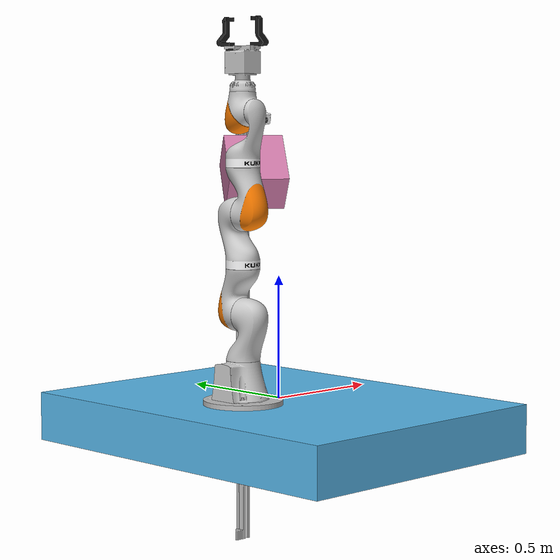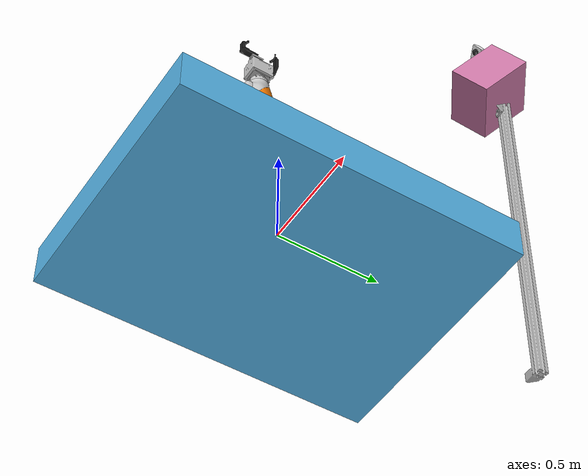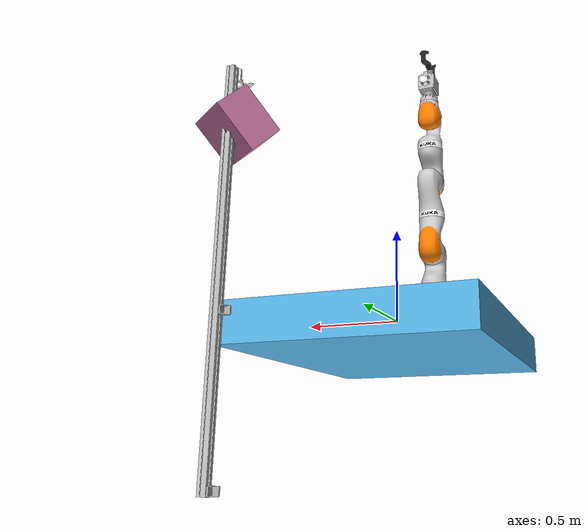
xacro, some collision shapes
<?xml version="1.0"?>

<robot xmlns:xacro="http://www.ros.org/wiki/xacro" name="rll_cell">

  <xacro:arg name="hardware_interface" default="PositionJointInterface" />
  <xacro:arg name="robot_name" default="iiwa" />
  <xacro:arg name="eef_type" default="egl90" />

  <xacro:include filename="$(find rll_description)/urdf/rll_cell.xacro" />
  <xacro:rll_cell hardware_interface="$(arg hardware_interface)" robot_name="$(arg robot_name)" eef_type="$(arg eef_type)" />

</robot>

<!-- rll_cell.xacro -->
<robot xmlns:xacro="http://www.ros.org/wiki/xacro" name="rll_cell">

  <xacro:include filename="$(find rll_description)/urdf/iiwa7/iiwa7.xacro" />
  <xacro:include filename="$(find rll_description)/urdf/visard160/rc_visard_160.xacro" />
  <xacro:include filename="$(find rll_description)/urdf/rll_virtual.xacro" />
  <xacro:include filename="$(find rll_description)/urdf/rll.gazebo.xacro" />

  <xacro:macro name="rll_cell" params="hardware_interface robot_name eef_type:=egl90">

    <link name="world" />
    <joint name="table_joint" type="fixed">
      <parent link="world" />
      <child link="table" />
      <origin xyz="0 0 0" rpy="0 0 0" />
    </joint>
    <link name="table">
      <inertial>
        <origin xyz="0 0 -0.1" rpy="0 0 0" />
        <mass value="500" />
        <inertia ixx="108" ixy="0" ixz="0" iyy="62" iyz="0" izz="167" />
      </inertial>
      <visual>
        <origin xyz="0 0 0" rpy="0 0 ${90 * pi / 180}" />
        <geometry>
          <mesh filename="package://rll_description/meshes/rll/visual/table.dae" />
        </geometry>
      </visual>
      <collision>
        <origin xyz="0 0 -0.1" rpy="0 0 0" />
        <geometry>
          <box size="1.2 1.6 0.2" />
        </geometry>
      </collision>
    </link>

    <joint name="base_adapter_joint" type="fixed">
      <parent link="table" />
      <child link="${robot_name}_base_adapter" />
      <origin xyz="-0.2 0 0" rpy="0 0 0" />
    </joint>
    <link name="${robot_name}_base_adapter">
      <visual>
        <origin xyz="0 0 0" rpy="0 0 0" />
        <geometry>
          <mesh filename="package://rll_description/meshes/rll/visual/base_adapter.dae" />
        </geometry>
      </visual>
      <collision>
        <origin xyz="0 0 0.01" rpy="0 0 0" />
        <geometry>
          <cylinder length="0.02" radius="0.16" />
        </geometry>
      </collision>
    </link>

    <!-- KUKA iiwa manipulator -->
    <xacro:iiwa7 hardware_interface="${hardware_interface}" robot_name="${robot_name}" parent="${robot_name}_base_adapter">
      <origin xyz="0 0 0.02" rpy="0 0 0" />
    </xacro:iiwa7>

    <!-- The rll_sdk comes with some predefined endeffectors.
         If you want to use a different endeffector you simply need to provide the corresponding macros -->
    <xacro:if value="${eef_type == 'egl90'}">
      <xacro:include filename="$(find rll_description)/urdf/eef/egl90/egl90.xacro" />
      <xacro:egl90 parent="${robot_name}_link_ee" robot_name="${robot_name}" />
    </xacro:if>

    <xacro:if value="${eef_type == 'crg200'}">
      <xacro:include filename="$(find rll_description)/urdf/eef/crg200/crg200.xacro" />
      <xacro:crg200 parent="${robot_name}_link_ee" robot_name="${robot_name}" />
    </xacro:if>

    <xacro:if value="${eef_type == 'cap'}">
      <xacro:include filename="$(find rll_description)/urdf/eef/cap/cap.xacro" />
      <xacro:cap parent="${robot_name}_link_ee" robot_name="${robot_name}" />
    </xacro:if>

    <xacro:if value="${eef_type == 'none'}">
      <xacro:include filename="$(find rll_description)/urdf/eef/none/none.xacro" />
      <xacro:none parent="${robot_name}_link_ee" robot_name="${robot_name}" />
    </xacro:if>

    <!-- Profile on which the cameras are mounted -->
    <joint name="profile_cams_joint" type="fixed">
      <parent link="table" />
      <child link="profile_cams" />
      <origin xyz="0 0 0" rpy="0 0 0" />
    </joint>
    <link name="profile_cams">
      <inertial>
        <origin xyz="0.58 0.82 0.17" rpy="0 0 0" />
        <mass value="5" />
        <inertia ixx="1.67" ixy="0" ixz="0" iyy="1.67" iyz="0" izz="0.002" />
      </inertial>
      <visual>
        <origin xyz="0 0 0" rpy="0 0 ${90 * pi / 180}" />
        <geometry>
          <mesh filename="package://rll_description/meshes/rll/visual/profile_cams.dae" />
        </geometry>
      </visual>
      <collision>
        <origin xyz="0.58 0.82 0.17" rpy="0 0 0" />
        <geometry>
          <box size="0.05 0.05 2.0" />
        </geometry>
      </collision>
    </link>

    <!-- Roboception camera -->
    <xacro:rc_160 parent="profile_cams" prefix="${robot_name}_">
      <origin xyz="0.577 0.8 0.829" rpy="0 ${180 * pi / 180} 0" />
    </xacro:rc_160>

    <!-- Axis camera -->
    <joint name="axis_cam_base_joint" type="fixed">
      <parent link="profile_cams" />
      <child link="axis_cam_base" />
      <origin xyz="0.577 0.8 1.137" rpy="${90 * pi / 180} 0 0" />
    </joint>
    <link name="axis_cam_base">
      <visual>
        <origin xyz="0 0 0" rpy="0 0 0" />
        <geometry>
          <mesh filename="package://rll_description/meshes/rll/visual/axis_cam_bottom.dae" />
        </geometry>
      </visual>
      <collision>
        <origin xyz="0 0 0.035" rpy="0 0 0" />
        <geometry>
          <box size="0.07 0.07 0.07" />
        </geometry>
      </collision>
    </link>
    <joint name="axis_cam_top_joint" type="fixed">
      <parent link="axis_cam_base" />
      <child link="axis_cam_top" />
      <origin xyz="0 0 0.068" rpy="${30 * pi / 180} ${30 * pi / 180} ${-65 * pi / 180}" />
    </joint>
    <link name="axis_cam_top">
      <visual>
        <origin xyz="0 0 0" rpy="0 0 0" />
        <geometry>
          <mesh filename="package://rll_description/meshes/rll/visual/axis_cam_top.dae" />
        </geometry>
      </visual>
      <collision>
        <origin xyz="0 0.01 0.03" rpy="0 0 0" />
        <geometry>
          <box size="0.06 0.11 0.06" />
        </geometry>
      </collision>
    </link>

    <!-- Extensions -->
    <xacro:rll_virtual />
    <xacro:rll_gazebo robot_name="${robot_name}" />

  </xacro:macro>

</robot>

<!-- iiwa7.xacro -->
<robot xmlns:xacro="http://www.ros.org/wiki/xacro">

  <xacro:include filename="$(find rll_description)/urdf/iiwa7/iiwa.gazebo.xacro" />
  <xacro:include filename="$(find rll_description)/urdf/iiwa7/iiwa.transmission.xacro" />

  <xacro:macro name="iiwa7" params="parent hardware_interface robot_name *origin">

    <!-- Macro local properties -->
    <xacro:property name="safety_controller_k_pos" value="15" />
    <xacro:property name="safety_controller_k_vel" value="10" />
    <xacro:property name="joint_damping" value="0.5" />

    <!--joint between {parent} and link_0-->
    <joint name="${parent}_${robot_name}_joint" type="fixed">
      <xacro:insert_block name="origin" />
      <parent link="${parent}" />
      <child link="${robot_name}_link_0" />
    </joint>

    <link name="${robot_name}_link_0">
      <inertial>
        <origin xyz="-0.01 0 0.07" rpy="0 0 0" />
        <mass value="5" />
        <inertia ixx="0.05" ixy="0" ixz="0" iyy="0.06" iyz="0" izz="0.03" />
      </inertial>
      <visual>
        <geometry>
          <mesh filename="package://rll_description/meshes/iiwa7/visual/base.dae" />
        </geometry>
      </visual>
      <collision>
        <origin xyz="0 0 0.0785" />
        <geometry>
          <cylinder length="0.157" radius="0.135" />
        </geometry>
      </collision>
    </link>

    <!-- joint between link_0 and link_1 -->
    <joint name="${robot_name}_joint_1" type="revolute">
      <parent link="${robot_name}_link_0" />
      <child link="${robot_name}_link_1" />
      <origin xyz="0 0 0.157" rpy="0 0 0" />
      <axis xyz="0 0 1" />
      <limit lower="${-169 * pi / 180}" upper="${169 * pi / 180}" effort="176" velocity="${98 * pi / 180}" />
      <safety_controller soft_lower_limit="${-167 * pi / 180}" soft_upper_limit="${167 * pi / 180}" k_position="${safety_controller_k_pos}" k_velocity="${safety_controller_k_vel}" />
      <dynamics damping="${joint_damping}" />
    </joint>

    <link name="${robot_name}_link_1">
      <inertial>
        <origin xyz="0 -0.03 0.12" rpy="0 0 0" />
        <mass value="3.4525" />
        <inertia ixx="0.02183" ixy="0" ixz="0" iyy="0.02081" iyz="0.003883" izz="0.007697" />
      </inertial>
      <visual>
        <geometry>
          <mesh filename="package://rll_description/meshes/iiwa7/visual/link1.dae" />
        </geometry>
      </visual>
      <collision>
        <origin xyz="0 -0.01 0.06" />
        <geometry>
          <cylinder length="0.12" radius="0.1" />
        </geometry>
      </collision>
    </link>

    <joint name="${robot_name}_joint_2" type="revolute">
      <parent link="${robot_name}_link_1" />
      <child link="${robot_name}_link_2" />
      <origin xyz="0 0 0.183" rpy="0 0 0" />
      <axis xyz="0 1 0" />
      <limit lower="${-119 * pi / 180}" upper="${119 * pi / 180}" effort="176" velocity="${98 * pi / 180}" />
      <safety_controller soft_lower_limit="${-117 * pi / 180}" soft_upper_limit="${117 * pi / 180}" k_position="${safety_controller_k_pos}" k_velocity="${safety_controller_k_vel}" />
      <dynamics damping="${joint_damping}" />
    </joint>

    <link name="${robot_name}_link_2">
      <inertial>
        <origin xyz="0.000 0.034417 0.0673286" rpy="0 0 0" />
        <mass value="3.4821" />
        <inertia ixx="0.02177" ixy="0" ixz="0.00" iyy="0.02075" iyz="0.003621" izz="0.00779" />
      </inertial>
      <visual>
        <geometry>
          <mesh filename="package://rll_description/meshes/iiwa7/visual/link2.dae" />
        </geometry>
      </visual>
      <collision>
        <origin xyz="0 0 0" />
        <geometry>
          <sphere radius="0.125" />
        </geometry>
      </collision>
    </link>

    <joint name="${robot_name}_joint_3" type="revolute">
      <parent link="${robot_name}_link_2" />
      <child link="${robot_name}_link_3" />
      <origin xyz="0 0 0.185" rpy="0 0 0" />
      <axis xyz="0 0 1" />
      <limit lower="${-169 * pi / 180}" upper="${169 * pi / 180}" effort="110" velocity="${100 * pi / 180}" />
      <safety_controller soft_lower_limit="${-167 * pi / 180}" soft_upper_limit="${167 * pi / 180}" k_position="${safety_controller_k_pos}" k_velocity="${safety_controller_k_vel}" />
      <dynamics damping="${joint_damping}" />
    </joint>

    <link name="${robot_name}_link_3">
      <inertial>
        <origin xyz="0 0.0295 0.1258" rpy="0 0 0" />
        <mass value="4.05623" />
        <inertia ixx="0.03204" ixy="0" ixz="0" iyy="0.03044" iyz="-0.006231" izz="0.009726" />
      </inertial>
      <visual>
        <geometry>
          <mesh filename="package://rll_description/meshes/iiwa7/visual/link3.dae" />
        </geometry>
      </visual>
      <collision>
        <origin xyz="0 0.01 0.02" />
        <geometry>
          <cylinder length="0.28" radius="0.1" />
        </geometry>
      </collision>
    </link>

    <joint name="${robot_name}_joint_4" type="revolute">
      <parent link="${robot_name}_link_3" />
      <child link="${robot_name}_link_4" />
      <origin xyz="0 0 0.215" rpy="0 0 0" />
      <axis xyz="0 -1 0" />
      <limit lower="${-119 * pi / 180}" upper="${119 * pi / 180}" effort="110" velocity="${130 * pi / 180}" />
      <safety_controller soft_lower_limit="${-117 * pi / 180}" soft_upper_limit="${117 * pi / 180}" k_position="${safety_controller_k_pos}" k_velocity="${safety_controller_k_vel}" />
      <dynamics damping="${joint_damping}" />
    </joint>

    <link name="${robot_name}_link_4">
      <inertial>
        <origin xyz="0 -0.034 0.067" rpy="0 0 0" />
        <mass value="3.4822" />
        <inertia ixx="0.021775" ixy="0" ixz="0" iyy="0.02075" iyz="-0.003621" izz="0.007783" />
      </inertial>
      <visual>
        <geometry>
          <mesh filename="package://rll_description/meshes/iiwa7/visual/link4.dae" />
        </geometry>
      </visual>
      <collision>
        <origin xyz="0 0 0" />
        <geometry>
          <sphere radius="0.125" />
        </geometry>
      </collision>
    </link>

    <joint name="${robot_name}_joint_5" type="revolute">
      <parent link="${robot_name}_link_4" />
      <child link="${robot_name}_link_5" />
      <origin xyz="0 0 0.4" rpy="0 0 0" />
      <axis xyz="0 0 1" />
      <limit lower="${-169 * pi / 180}" upper="${169 * pi / 180}" effort="110" velocity="${140 * pi / 180}" />
      <safety_controller soft_lower_limit="${-167 * pi / 180}" soft_upper_limit="${167 * pi / 180}" k_position="${safety_controller_k_pos}" k_velocity="${safety_controller_k_vel}" />
      <dynamics damping="${joint_damping}" />
    </joint>

    <link name="${robot_name}_link_5">
      <inertial>
        <origin xyz="0.0001 -0.02263 -0.1365" rpy="0 0 0" />
        <mass value="2.1633" />
        <inertia ixx="0.01287" ixy="0" ixz="0" iyy="0.01112" iyz="0.003943" izz="0.0057128" />
      </inertial>
      <visual>
        <geometry>
          <mesh filename="package://rll_description/meshes/iiwa7/visual/link5.dae" />
        </geometry>
      </visual>
      <collision>
        <origin xyz="0 -0.01 -0.18" />
        <geometry>
          <cylinder length="0.3" radius="0.1" />
        </geometry>
      </collision>
    </link>

    <joint name="${robot_name}_joint_6" type="revolute">
      <parent link="${robot_name}_link_5" />
      <child link="${robot_name}_link_6" />
      <origin xyz="0 0 0" rpy="0 0 0" />
      <axis xyz="0 1 0" />
      <limit lower="${-119 * pi / 180}" upper="${119 * pi / 180}" effort="40" velocity="${180 * pi / 180}" />
      <safety_controller soft_lower_limit="${-117 * pi / 180}" soft_upper_limit="${117 * pi / 180}" k_position="${safety_controller_k_pos}" k_velocity="${safety_controller_k_vel}" />
      <dynamics damping="${joint_damping}" />
    </joint>

    <link name="${robot_name}_link_6">
      <inertial>
        <origin xyz="0 0.00047 0.002124" rpy="0 0 0" />
        <mass value="2.3466" />
        <inertia ixx="0.006522" ixy="0" ixz="0" iyy="0.006270" iyz="0.00032280" izz="0.0045345" />
      </inertial>
      <visual>
        <geometry>
          <mesh filename="package://rll_description/meshes/iiwa7/visual/link6.dae" />
        </geometry>
      </visual>
      <collision>
        <origin xyz="0 -0.03 0" />
        <geometry>
          <sphere radius="0.08" />
        </geometry>
      </collision>
    </link>

    <joint name="${robot_name}_joint_7" type="revolute">
      <parent link="${robot_name}_link_6" />
      <child link="${robot_name}_link_7" />
      <origin xyz="0 0 0" rpy="0 0 0" />
      <axis xyz="0 0 1" />
      <limit lower="${-174 * pi / 180}" upper="${174 * pi / 180}" effort="40" velocity="${180 * pi / 180}" />
      <safety_controller soft_lower_limit="${-172 * pi / 180}" soft_upper_limit="${172 * pi / 180}" k_position="${safety_controller_k_pos}" k_velocity="${safety_controller_k_vel}" />
      <dynamics damping="${joint_damping}" />
    </joint>

    <link name="${robot_name}_link_7">
      <inertial>
        <origin xyz="0 0 0.1" rpy="0 0 0" />
        <mass value="0.34217" />
        <inertia ixx="0.0022711" ixy="0.0000221" ixz="0" iyy="0.0022807" iyz="0" izz="0.002872" />
      </inertial>
      <visual>
        <geometry>
          <mesh filename="package://rll_description/meshes/iiwa7/visual/link7.dae" />
        </geometry>
      </visual>
      <collision>
        <origin xyz="0 0 -0.01" />
        <geometry>
          <sphere radius="0.085" />
        </geometry>
      </collision>
    </link>

    <joint name="${robot_name}_joint_ee" type="fixed">
      <parent link="${robot_name}_link_7" />
      <child link="${robot_name}_link_ee" />
      <origin xyz="0 0 0.126" rpy="0 0 0" />
    </joint>

    <link name="${robot_name}_link_ee">
      <collision>
        <origin xyz="0 0 -0.046" />
        <geometry>
          <sphere radius="0.065" />
        </geometry>
      </collision>
    </link>

    <xacro:iiwa_gazebo robot_name="${robot_name}" />
    <xacro:iiwa_transmission robot_name="${robot_name}" hardware_interface="${hardware_interface}" />

  </xacro:macro>

</robot>

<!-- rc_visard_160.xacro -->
<robot name="rc_visard_160" xmlns:xacro="http://www.ros.org/wiki/xacro">
  <xacro:macro name="rc_160" params="prefix parent *origin">

    <joint name="roboception_gusset_joint" type="fixed">
      <parent link="${parent}" />
      <child link="${prefix}roboception_gusset" />
      <xacro:insert_block name="origin" />
    </joint>
    <link name="${prefix}roboception_gusset">
      <visual>
        <origin xyz="0 0 0" rpy="0 0 0" />
        <geometry>
          <mesh filename="package://rll_description/meshes/visard160/visual/roboception_gusset.dae" />
        </geometry>
      </visual>
      <collision>
        <origin xyz="0 -0.05 0.05" rpy="0 0 0" />
        <geometry>
          <box size="0.05 0.1 0.1" />
        </geometry>
      </collision>
    </link>

    <joint name="${prefix}roboception_adapter_joint" type="fixed">
      <parent link="${prefix}roboception_gusset" />
      <child link="${prefix}roboception_adapter" />
      <origin xyz="0.015 -0.075 0" rpy="${-90 * pi / 180} 0 ${125 * pi / 180}" />
    </joint>
    <link name="${prefix}roboception_adapter">
      <visual>
        <origin xyz="0 0 0" rpy="0 0 0" />
        <geometry>
          <mesh filename="package://rll_description/meshes/visard160/visual/roboception_adapter.dae" />
        </geometry>
      </visual>
    </link>

    <joint name="${prefix}roboception_camera" type="fixed">
      <parent link="${prefix}roboception_adapter" />
      <child link="${prefix}roboception_camera_uncal" />
      <origin xyz="-0.031 0.0375 0.08" rpy="${-45 * pi / 180} ${90 * pi / 180} ${180 * pi / 180}" />
    </joint>
    <link name="${prefix}roboception_camera_uncal">
      <visual>
        <geometry>
          <mesh filename="package://rll_description/meshes/visard160/visual/rc_visard_160.dae" />
        </geometry>
      </visual>
      <collision>
        <origin xyz="0.08 0.03 -0.05" rpy="0 0 0" />
        <geometry>
          <box size="0.27 0.2 0.27" />
        </geometry>
      </collision>
    </link>

  </xacro:macro>
</robot>

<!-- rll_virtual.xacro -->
<robot xmlns:xacro="http://www.ros.org/wiki/xacro">

  <xacro:macro name="rll_virtual">

    <!-- Local properties -->
    <xacro:property name="wall_origin_x_long_side" value="0.605" />
    <xacro:property name="wall_origin_y_short_side" value="0.805" />
    <xacro:property name="wall_origin_z" value="0.7" />

    <xacro:property name="collision_geometry_wall_long_side">
      <box size="0.01 1.6 1.4" rpy="0 0 0" />
    </xacro:property>

    <xacro:property name="collision_geometry_wall_short_side">
      <box size="1.2 0.01 1.4" rpy="0 0 0" />
    </xacro:property>

    <xacro:property name="wall_inertia_long_side">
      <origin xyz="0 0 0" rpy="0 0 0" />
      <mass value="5" />
      <inertia ixx="1.88" ixy="0" ixz="0" iyy="0.82" iyz="0" izz="1.07" />
    </xacro:property>

    <xacro:property name="wall_inertia_short_side">
      <origin xyz="0 0 0" rpy="0 0 0" />
      <mass value="4" />
      <inertia ixx="0.65" ixy="0" ixz="0" iyy="1.13" iyz="0" izz="0.48" />
    </xacro:property>

    <!-- virtual walls -->
    <joint name="wall_joint1" type="fixed">
      <parent link="table" />
      <child link="wall_front" />
      <origin xyz="${wall_origin_x_long_side} 0 ${wall_origin_z}" rpy="0 0 0" />
    </joint>
    <joint name="wall_joint2" type="fixed">
      <parent link="table" />
      <child link="wall_back" />
      <origin xyz="-${wall_origin_x_long_side} 0 ${wall_origin_z}" rpy="0 0 0" />
    </joint>
    <joint name="wall_joint3" type="fixed">
      <parent link="table" />
      <child link="wall_left" />
      <origin xyz="0 -${wall_origin_y_short_side} ${wall_origin_z}" rpy="0 0 0" />
    </joint>
    <joint name="wall_joint4" type="fixed">
      <parent link="table" />
      <child link="wall_right" />
      <origin xyz="0 ${wall_origin_y_short_side} ${wall_origin_z}" rpy="0 0 0" />
    </joint>

    <link name="wall_front">
      <inertial>
        <xacro:insert_block name="wall_inertia_long_side" />
      </inertial>
      <collision>
        <origin xyz="0 0 0" rpy="0 0 0" />
        <geometry>
          <xacro:insert_block name="collision_geometry_wall_long_side" />
        </geometry>
      </collision>
    </link>
    <link name="wall_back">
      <inertial>
        <xacro:insert_block name="wall_inertia_long_side" />
      </inertial>
      <collision>
        <origin xyz="0 0 0" rpy="0 0 0" />
        <geometry>
          <xacro:insert_block name="collision_geometry_wall_long_side" />
        </geometry>
      </collision>
    </link>
    <link name="wall_left">
      <inertial>
        <xacro:insert_block name="wall_inertia_short_side" />
      </inertial>
      <collision>
        <origin xyz="0 0 0" rpy="0 0 0" />
        <geometry>
          <xacro:insert_block name="collision_geometry_wall_short_side" />
        </geometry>
      </collision>
    </link>
    <link name="wall_right">
      <inertial>
        <xacro:insert_block name="wall_inertia_short_side" />
      </inertial>
      <collision>
        <origin xyz="0 0 0" rpy="0 0 0" />
        <geometry>
          <xacro:insert_block name="collision_geometry_wall_short_side" />
        </geometry>
      </collision>
    </link>

    <material name="transparent">
      <color rgba="0.8784 0.8745 0.8588 0.3" />
    </material>

  </xacro:macro>

</robot>

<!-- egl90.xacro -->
<robot name="egl90" xmlns:xacro="http://www.ros.org/wiki/xacro">

  <xacro:include filename="$(find rll_description)/urdf/eef/egl90/egl90.gazebo.xacro" />
  <xacro:include filename="$(find rll_description)/urdf/eef/egl90/egl90.transmission.xacro" />

  <xacro:macro name="egl90" params="parent robot_name">

    <!-- Local properties of the macro -->
    <xacro:property name="mesh_path" value="package://rll_description/meshes/egl90" />
    <xacro:property name="finger_mass" value="0.1" />
    <xacro:property name="joint_lower_limit" value="0.0" />
    <xacro:property name="joint_upper_limit" value="0.055" />
    <xacro:property name="joint_damping" value="0.5" />

    <joint name="${robot_name}_egl90_adapter_joint" type="fixed">
      <parent link="${parent}" />
      <child link="${robot_name}_egl90_adapter" />
      <origin xyz="0 0 0" rpy="0 0 ${-90 * pi / 180}" />
    </joint>
    <link name="${robot_name}_egl90_adapter">
      <visual>
        <origin xyz="0 0 0" rpy="0 0 0" />
        <geometry>
          <mesh filename="${mesh_path}/visual/gripper_adapter.dae" />
        </geometry>
      </visual>
      <collision>
        <origin xyz="0 0 0.015" rpy="0 0 0" />
        <geometry>
          <box size="0.09 0.07 0.03" />
        </geometry>
      </collision>
    </link>

    <joint name="${robot_name}_egl90_mount" type="fixed">
      <parent link="${robot_name}_egl90_adapter" />
      <child link="${robot_name}_egl90_base" />
      <origin xyz="0 0 0.024" rpy="0 0 0" />
    </joint>
    <link name="${robot_name}_egl90_base">
      <inertial>
        <origin xyz="0 0 0.0465291" rpy="0 0 0" />
        <mass value="2.57" />
        <inertia ixx="0.003" ixy="0" ixz="0" iyy="0.004" iyz="0" izz="0.004" />
      </inertial>
      <visual>
        <origin xyz="0 0 0" rpy="0 0 0" />
        <geometry>
          <mesh filename="${mesh_path}/visual/gripper_base.dae" />
        </geometry>
      </visual>
      <collision>
        <origin xyz="-0.025 0 0.055" rpy="0 0 0" />
        <geometry>
          <box size="0.18 0.09 0.108" />
        </geometry>
      </collision>
    </link>

    <joint name="${robot_name}_egl90_position_left" type="prismatic">
      <parent link="${robot_name}_egl90_base" />
      <child link="${robot_name}_egl90_waggon_left" />
      <origin xyz="0.02985 0.0255 0.1063" rpy="0 0 ${180 * pi / 180}" />
      <axis xyz="1 0 0" />
      <limit effort="500.0" lower="${joint_lower_limit}" upper="${joint_upper_limit}" velocity="0.1" />
      <dynamics damping="${joint_damping}" />
    </joint>
    <link name="${robot_name}_egl90_waggon_left">
      <visual>
        <origin xyz="0 0 0" rpy="0 0 0" />
        <geometry>
          <mesh filename="${mesh_path}/visual/gripper_waggon.dae" />
        </geometry>
      </visual>
      <collision>
        <origin xyz="0 0 -0.01" rpy="0 0 0" />
        <geometry>
          <box size="0.06 0.035 0.02" />
        </geometry>
      </collision>
    </link>

    <joint name="${robot_name}_egl90_finger_left_joint" type="fixed">
      <parent link="${robot_name}_egl90_waggon_left" />
      <child link="${robot_name}_egl90_finger_left" />
      <origin xyz="-0.016 0 0" rpy="0 0 0" />
    </joint>
    <link name="${robot_name}_egl90_finger_left">
      <inertial>
        <origin xyz="0 0 0" rpy="0 0 0" />
        <mass value="${finger_mass}" />
        <inertia ixx="0.002" ixy="0" ixz="0" iyy="0.0002" iyz="0" izz="0.0002" />
      </inertial>
      <visual>
        <origin xyz="0 0 0" rpy="0 0 0" />
        <geometry>
          <mesh filename="${mesh_path}/visual/gripper_finger.dae" />
        </geometry>
      </visual>
      <collision>
        <origin xyz="0 0 0" rpy="0 0 0" />
        <geometry>
          <mesh filename="${mesh_path}/collision/gripper_finger.stl" />
        </geometry>
      </collision>
    </link>

    <joint name="${robot_name}_egl90_position_right" type="prismatic">
      <parent link="${robot_name}_egl90_base" />
      <child link="${robot_name}_egl90_waggon_right" />
      <origin xyz="-0.02985 -0.0255 0.1063" rpy="0 0 0" />
      <axis xyz="1 0 0" />
      <limit effort="500.0" lower="${joint_lower_limit}" upper="${joint_upper_limit}" velocity="0.1" />
      <dynamics damping="${joint_damping}" />
    </joint>
    <link name="${robot_name}_egl90_waggon_right">
      <visual>
        <origin xyz="0 0 0" rpy="0 0 0" />
        <geometry>
          <mesh filename="${mesh_path}/visual/gripper_waggon.dae" />
        </geometry>
      </visual>
      <collision>
        <origin xyz="0 0 -0.01" rpy="0 0 0" />
        <geometry>
          <box size="0.06 0.035 0.02" />
        </geometry>
      </collision>
    </link>

    <joint name="${robot_name}_egl90_finger_right_joint" type="fixed">
      <parent link="${robot_name}_egl90_waggon_right" />
      <child link="${robot_name}_egl90_finger_right" />
      <origin xyz="-0.016 0 0" rpy="0 0 0" />
    </joint>
    <link name="${robot_name}_egl90_finger_right">
      <inertial>
        <origin xyz="0 0 0" rpy="0 0 0" />
        <mass value="${finger_mass}" />
        <inertia ixx="0.002" ixy="0" ixz="0" iyy="0.0002" iyz="0" izz="0.0002" />
      </inertial>
      <visual>
        <origin xyz="0 0 0" rpy="0 0 0" />
        <geometry>
          <mesh filename="${mesh_path}/visual/gripper_finger.dae" />
        </geometry>
      </visual>
      <collision>
        <origin xyz="0 0 0" rpy="0 0 0" />
        <geometry>
          <mesh filename="${mesh_path}/collision/gripper_finger.stl" />
        </geometry>
      </collision>
    </link>

    <!-- This is the EEF/TCP link, the position is at the very bottom of the gripper finger -->
    <joint name="${robot_name}_egl90_ee_joint" type="fixed">
      <parent link="${parent}" />
      <child link="${robot_name}_link_tcp" />
      <origin xyz="0 0 0.248" rpy="0 0 0" />
    </joint>
    <link name="${robot_name}_link_tcp" />

    <!-- Gazebo settings -->
    <xacro:egl90_gazebo robot_name="${robot_name}" />
    <xacro:egl90_transmission robot_name="${robot_name}" />

  </xacro:macro>

</robot>
